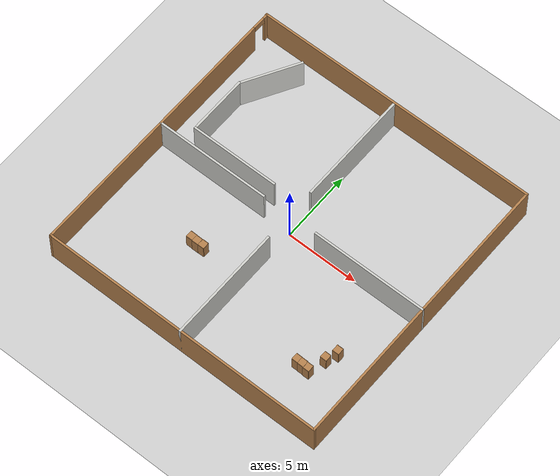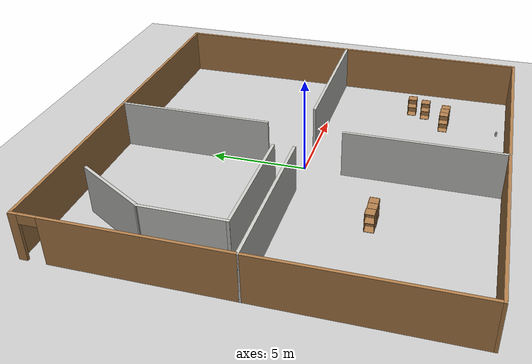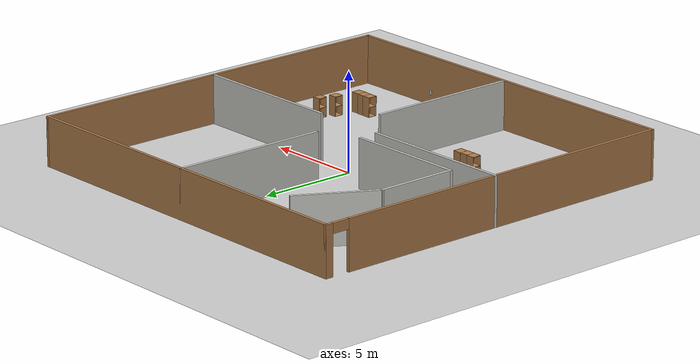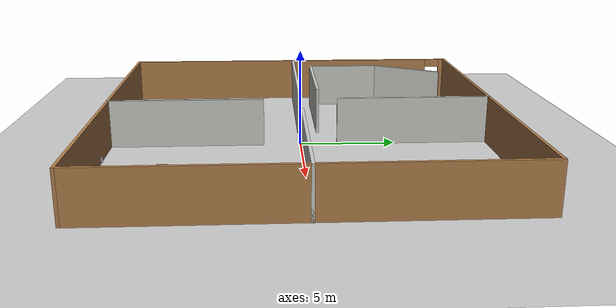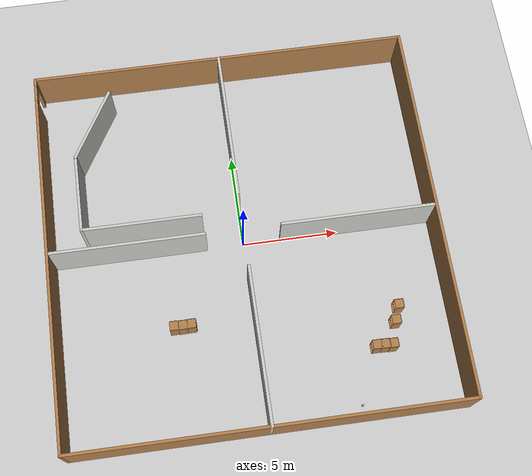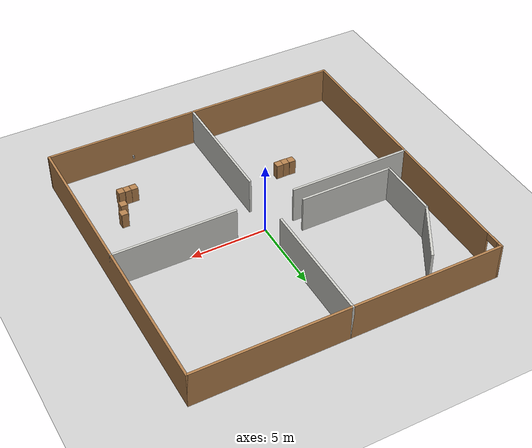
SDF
<sdf version="1.6">
 <world name="default">
  <light name="sun" type="directional">
   <pose>0 0 10 0 -0 0</pose>
   <diffuse>0.8 0.8 0.8 1</diffuse>
   <specular>0.2 0.2 0.2 1</specular>
   <attenuation>
    <range>1000</range>
    <constant>0.9</constant>
    <linear>0.01</linear>
    <quadratic>0.001</quadratic>
   </attenuation>
   <direction>-0.5 0.1 -0.9</direction>
  </light>
  <model name="ground_plane">
   <static>1</static>
   <link name="link">
    <collision name="collision">
     <geometry><plane><normal>0 0 1</normal><size>100 100</size></plane></geometry>
     <surface>
      <contact><collide_bitmask>65535</collide_bitmask></contact>
      <friction><ode><mu>100</mu><mu2>50</mu2></ode></friction>
     </surface>
    </collision>
    <visual name="visual">
     <cast_shadows>0</cast_shadows>
     <geometry><plane><normal>0 0 1</normal><size>100 100</size></plane></geometry>
     <material>
      <script><uri>file://media/materials/scripts/gazebo.material</uri><name>Gazebo/Grey</name></script>
     </material>
    </visual>
   </link>
  </model>
  <gravity>0 0 -9.8</gravity>
  <magnetic_field>6e-06 2.3e-05 -4.2e-05</magnetic_field>
  <atmosphere type="adiabatic"/>
  <physics name="default_physics" default="0" type="ode">
   <max_step_size>0.001</max_step_size>
   <real_time_factor>1</real_time_factor>
   <real_time_update_rate>1000</real_time_update_rate>
  </physics>
  <scene><ambient>0.4 0.4 0.4 1</ambient><background>0.7 0.7 0.7 1</background><shadows>1</shadows></scene>
  <audio><device>default</device></audio>
  <spherical_coordinates>
   <surface_model>EARTH_WGS84</surface_model>
   <latitude_deg>0</latitude_deg>
   <longitude_deg>0</longitude_deg>
   <elevation>0</elevation>
   <heading_deg>0</heading_deg>
  </spherical_coordinates>
  <model name="Sample_house">
   <link name="Wall_14">
    <collision name="Wall_14_Collision">
     <geometry><box><size>8.15 0.15 2.5</size></box></geometry>
     <pose>0 0 1.25 0 -0 0</pose>
    </collision>
    <visual name="Wall_14_Visual">
     <pose>0 0 1.25 0 -0 0</pose>
     <geometry><box><size>8.15 0.15 2.5</size></box></geometry>
     <material>
      <script><uri>file://media/materials/scripts/gazebo.material</uri><name>Gazebo/CeilingTiled</name></script>
      <ambient>0.435294 0.796078 0.67451 1</ambient>
     </material>
     <meta><layer>0</layer></meta>
    </visual>
    <pose>0 6 0 0 -0 -1.5708</pose>
   </link>
   <link name="Wall_16">
    <collision name="Wall_16_Collision">
     <geometry><box><size>8.15 0.15 2.5</size></box></geometry>
     <pose>0 0 1.25 0 -0 0</pose>
    </collision>
    <visual name="Wall_16_Visual">
     <pose>0 0 1.25 0 -0 0</pose>
     <geometry><box><size>8.15 0.15 2.5</size></box></geometry>
     <material>
      <script><uri>file://media/materials/scripts/gazebo.material</uri><name>Gazebo/CeilingTiled</name></script>
      <ambient>0.435294 0.796078 0.67451 1</ambient>
     </material>
     <meta><layer>0</layer></meta>
    </visual>
    <pose>-6 0 0 0 -0 0</pose>
   </link>
   <link name="Wall_18">
    <collision name="Wall_18_Collision">
     <geometry><box><size>8.15 0.15 2.5</size></box></geometry>
     <pose>0 0 1.25 0 -0 0</pose>
    </collision>
    <visual name="Wall_18_Visual">
     <pose>0 0 1.25 0 -0 0</pose>
     <geometry><box><size>8.15 0.15 2.5</size></box></geometry>
     <material>
      <script><uri>file://media/materials/scripts/gazebo.material</uri><name>Gazebo/CeilingTiled</name></script>
      <ambient>0.435294 0.796078 0.67451 1</ambient>
     </material>
     <meta><layer>0</layer></meta>
    </visual>
    <pose>0 -6 0 0 -0 1.5708</pose>
   </link>
   <link name="Wall_20">
    <collision name="Wall_20_Collision">
     <geometry><box><size>8.15 0.15 2.5</size></box></geometry>
     <pose>0 0 1.25 0 -0 0</pose>
    </collision>
    <visual name="Wall_20_Visual">
     <pose>0 0 1.25 0 -0 0</pose>
     <geometry><box><size>8.15 0.15 2.5</size></box></geometry>
     <material>
      <script><uri>file://media/materials/scripts/gazebo.material</uri><name>Gazebo/CeilingTiled</name></script>
      <ambient>0.435294 0.796078 0.67451 1</ambient>
     </material>
     <meta><layer>0</layer></meta>
    </visual>
    <pose>6 0 0 0 -0 3.14159</pose>
   </link>
   <link name="Wall_22">
    <collision name="Wall_22_Collision">
     <geometry><box><size>6.25 0.15 2.5</size></box></geometry>
     <pose>0 0 1.25 0 -0 0</pose>
    </collision>
    <visual name="Wall_22_Visual">
     <pose>0 0 1.25 0 -0 0</pose>
     <geometry><box><size>6.25 0.15 2.5</size></box></geometry>
     <material>
      <script><uri>file://media/materials/scripts/gazebo.material</uri><name>Gazebo/CeilingTiled</name></script>
      <ambient>0.435294 0.796078 0.67451 1</ambient>
     </material>
     <meta><layer>0</layer></meta>
    </visual>
    <pose>-5.12092 1.03734 0 0 -0 0</pose>
   </link>
   <link name="Wall_24">
    <collision name="Wall_24_Collision">
     <geometry><box><size>4.25 0.15 2.5</size></box></geometry>
     <pose>0 0 1.25 0 -0 0</pose>
    </collision>
    <visual name="Wall_24_Visual">
     <pose>0 0 1.25 0 -0 0</pose>
     <geometry><box><size>4.25 0.15 2.5</size></box></geometry>
     <material>
      <script><uri>file://media/materials/scripts/gazebo.material</uri><name>Gazebo/CeilingTiled</name></script>
      <ambient>0.435294 0.796078 0.67451 1</ambient>
     </material>
     <meta><layer>0</layer></meta>
    </visual>
    <pose>-8.17092 3.08734 0 0 -0 1.5708</pose>
   </link>
   <link name="Wall_25">
    <collision name="Wall_25_Collision">
     <geometry><box><size>4.25 0.15 2.5</size></box></geometry>
     <pose>0 0 1.25 0 -0 0</pose>
    </collision>
    <visual name="Wall_25_Visual">
     <pose>0 0 1.25 0 -0 0</pose>
     <geometry><box><size>4.25 0.15 2.5</size></box></geometry>
     <material>
      <script><uri>file://media/materials/scripts/gazebo.material</uri><name>Gazebo/CeilingTiled</name></script>
      <ambient>0.435294 0.796078 0.67451 1</ambient>
     </material>
     <meta><layer>0</layer></meta>
    </visual>
    <pose>-7.14592 6.91269 0 0 -0 1.0472</pose>
   </link>
   <link name="Wall_5">
    <collision name="Wall_5_Collision">
     <geometry><box><size>20.15 0.15 2.5</size></box></geometry>
     <pose>0 0 1.25 0 -0 0</pose>
    </collision>
    <visual name="Wall_5_Visual">
     <pose>0 0 1.25 0 -0 0</pose>
     <geometry><box><size>20.15 0.15 2.5</size></box></geometry>
     <material>
      <script><uri>file://media/materials/scripts/gazebo.material</uri><name>Gazebo/Wood</name></script>
      <ambient>0.996078 0.47451 0.0196078 1</ambient>
     </material>
     <meta><layer>0</layer></meta>
    </visual>
    <pose>10 0 0 0 -0 -1.5708</pose>
   </link>
   <link name="Wall_6">
    <collision name="Wall_6_Collision">
     <geometry><box><size>20.15 0.15 2.5</size></box></geometry>
     <pose>0 0 1.25 0 -0 0</pose>
    </collision>
    <visual name="Wall_6_Visual">
     <pose>0 0 1.25 0 -0 0</pose>
     <geometry><box><size>20.15 0.15 2.5</size></box></geometry>
     <material>
      <script><uri>file://media/materials/scripts/gazebo.material</uri><name>Gazebo/Wood</name></script>
      <ambient>0.996078 0.47451 0.0196078 1</ambient>
     </material>
     <meta><layer>0</layer></meta>
    </visual>
    <pose>0 -10 0 0 -0 3.14159</pose>
   </link>
   <link name="Wall_7">
    <pose>-10 0 0 0 -0 1.5708</pose>
    <visual name="Wall_7_Visual_0">
     <pose>-0.66033 0 1.25 0 -0 0</pose>
     <geometry><box><size>18.8293 0.15 2.5</size></box></geometry>
     <material>
      <script><uri>file://media/materials/scripts/gazebo.material</uri><name>Gazebo/Wood</name></script>
      <ambient>0.996078 0.47451 0.0196078 1</ambient>
     </material>
     <meta><layer>0</layer></meta>
    </visual>
    <collision name="Wall_7_Collision_0">
     <geometry><box><size>18.8293 0.15 2.5</size></box></geometry>
     <pose>-0.66033 0 1.25 0 -0 0</pose>
    </collision>
    <visual name="Wall_7_Visual_1">
     <pose>9.86467 0 1.25 0 -0 0</pose>
     <geometry><box><size>0.420661 0.15 2.5</size></box></geometry>
     <material>
      <script><uri>file://media/materials/scripts/gazebo.material</uri><name>Gazebo/Wood</name></script>
      <ambient>0.996078 0.47451 0.0196078 1</ambient>
     </material>
     <meta><layer>0</layer></meta>
    </visual>
    <collision name="Wall_7_Collision_1">
     <geometry><box><size>0.420661 0.15 2.5</size></box></geometry>
     <pose>9.86467 0 1.25 0 -0 0</pose>
    </collision>
    <visual name="Wall_7_Visual_2">
     <pose>9.20434 0 2.25 0 -0 0</pose>
     <geometry><box><size>0.9 0.15 0.5</size></box></geometry>
     <material>
      <script><uri>file://media/materials/scripts/gazebo.material</uri><name>Gazebo/Wood</name></script>
      <ambient>0.996078 0.47451 0.0196078 1</ambient>
     </material>
     <meta><layer>0</layer></meta>
    </visual>
    <collision name="Wall_7_Collision_2">
     <geometry><box><size>0.9 0.15 0.5</size></box></geometry>
     <pose>9.20434 0 2.25 0 -0 0</pose>
    </collision>
   </link>
   <link name="Wall_8">
    <collision name="Wall_8_Collision">
     <geometry><box><size>20.15 0.15 2.5</size></box></geometry>
     <pose>0 0 1.25 0 -0 0</pose>
    </collision>
    <visual name="Wall_8_Visual">
     <pose>0 0 1.25 0 -0 0</pose>
     <geometry><box><size>20.15 0.15 2.5</size></box></geometry>
     <material>
      <script><uri>file://media/materials/scripts/gazebo.material</uri><name>Gazebo/Wood</name></script>
      <ambient>0.996078 0.47451 0.0196078 1</ambient>
     </material>
     <meta><layer>0</layer></meta>
    </visual>
    <pose>0 10 0 0 -0 0</pose>
   </link>
   <static>1</static>
  </model>
  <model name="cabinet">
   <static>1</static>
   <link name="cabinet_bottom_plate">
    <inertial>
     <pose>0 0 -1 0 -0 0</pose>
     <inertia><ixx>2.05</ixx><ixy>0</ixy><ixz>0</ixz><iyy>2.05</iyy><iyz>0</iyz><izz>2.05</izz></inertia>
     <mass>25</mass>
    </inertial>
    <collision name="cabinet_bottom_plate_geom">
     <pose>0 0 0.01 0 -0 0</pose>
     <geometry><box><size>0.45 0.45 0.02</size></box></geometry>
    </collision>
    <visual name="cabinet_bottom_plate_geom_visual">
     <pose>0 0 0.01 0 -0 0</pose>
     <geometry><box><size>0.45 0.45 0.02</size></box></geometry>
     <material>
      <script><uri>file://media/materials/scripts/gazebo.material</uri><name>Gazebo/Wood</name></script>
     </material>
    </visual>
    <collision name="cabinet_bottom_plate_geom_cabinet_back_plate">
     <pose>0.235 0 0.51 0 -0 0</pose>
     <geometry><box><size>0.02 0.45 1.02</size></box></geometry>
    </collision>
    <visual name="cabinet_bottom_plate_geom_cabinet_back_plate_visual">
     <pose>0.235 0 0.51 0 -0 0</pose>
     <geometry><box><size>0.02 0.45 1.02</size></box></geometry>
     <material>
      <script><uri>file://media/materials/scripts/gazebo.material</uri><name>Gazebo/Wood</name></script>
     </material>
    </visual>
    <collision name="cabinet_bottom_plate_geom_cabinet_left_plate">
     <pose>0 0.235 0.51 0 -0 0</pose>
     <geometry><box><size>0.45 0.02 1.02</size></box></geometry>
    </collision>
    <visual name="cabinet_bottom_plate_geom_cabinet_left_plate_visual">
     <pose>0 0.235 0.51 0 -0 0</pose>
     <geometry><box><size>0.45 0.02 1.02</size></box></geometry>
     <material>
      <script><uri>file://media/materials/scripts/gazebo.material</uri><name>Gazebo/Wood</name></script>
     </material>
    </visual>
    <collision name="cabinet_bottom_plate_geom_cabinet_middle_plate">
     <pose>0 0 0.51 0 -0 0</pose>
     <geometry><box><size>0.45 0.45 0.02</size></box></geometry>
    </collision>
    <visual name="cabinet_bottom_plate_geom_cabinet_middle_plate_visual">
     <pose>0 0 0.51 0 -0 0</pose>
     <geometry><box><size>0.45 0.45 0.02</size></box></geometry>
     <material>
      <script><uri>file://media/materials/scripts/gazebo.material</uri><name>Gazebo/Wood</name></script>
     </material>
    </visual>
    <collision name="cabinet_bottom_plate_geom_cabinet_right_plate">
     <pose>0 -0.235 0.51 0 -0 0</pose>
     <geometry><box><size>0.45 0.02 1.02</size></box></geometry>
    </collision>
    <visual name="cabinet_bottom_plate_geom_cabinet_right_plate_visual">
     <pose>0 -0.235 0.51 0 -0 0</pose>
     <geometry><box><size>0.45 0.02 1.02</size></box></geometry>
     <material>
      <script><uri>file://media/materials/scripts/gazebo.material</uri><name>Gazebo/Wood</name></script>
     </material>
    </visual>
    <collision name="cabinet_bottom_plate_geom_cabinet_top_plate">
     <pose>0 0 1.01 0 -0 0</pose>
     <geometry><box><size>0.45 0.45 0.02</size></box></geometry>
    </collision>
    <visual name="cabinet_bottom_plate_geom_cabinet_top_plate_visual">
     <pose>0 0 1.01 0 -0 0</pose>
     <geometry><box><size>0.45 0.45 0.02</size></box></geometry>
     <material>
      <script><uri>file://media/materials/scripts/gazebo.material</uri><name>Gazebo/Wood</name></script>
     </material>
    </visual>
   </link>
   <pose>-4.12589 -4.16756 0 0 -0 0</pose>
  </model>
  <model name="cabinet_0">
   <static>1</static>
   <link name="cabinet_bottom_plate">
    <inertial>
     <pose>0 0 -1 0 -0 0</pose>
     <inertia><ixx>2.05</ixx><ixy>0</ixy><ixz>0</ixz><iyy>2.05</iyy><iyz>0</iyz><izz>2.05</izz></inertia>
     <mass>25</mass>
    </inertial>
    <collision name="cabinet_bottom_plate_geom">
     <pose>0 0 0.01 0 -0 0</pose>
     <geometry><box><size>0.45 0.45 0.02</size></box></geometry>
    </collision>
    <visual name="cabinet_bottom_plate_geom_visual">
     <pose>0 0 0.01 0 -0 0</pose>
     <geometry><box><size>0.45 0.45 0.02</size></box></geometry>
     <material>
      <script><uri>file://media/materials/scripts/gazebo.material</uri><name>Gazebo/Wood</name></script>
     </material>
    </visual>
    <collision name="cabinet_bottom_plate_geom_cabinet_back_plate">
     <pose>0.235 0 0.51 0 -0 0</pose>
     <geometry><box><size>0.02 0.45 1.02</size></box></geometry>
    </collision>
    <visual name="cabinet_bottom_plate_geom_cabinet_back_plate_visual">
     <pose>0.235 0 0.51 0 -0 0</pose>
     <geometry><box><size>0.02 0.45 1.02</size></box></geometry>
     <material>
      <script><uri>file://media/materials/scripts/gazebo.material</uri><name>Gazebo/Wood</name></script>
     </material>
    </visual>
    <collision name="cabinet_bottom_plate_geom_cabinet_left_plate">
     <pose>0 0.235 0.51 0 -0 0</pose>
     <geometry><box><size>0.45 0.02 1.02</size></box></geometry>
    </collision>
    <visual name="cabinet_bottom_plate_geom_cabinet_left_plate_visual">
     <pose>0 0.235 0.51 0 -0 0</pose>
     <geometry><box><size>0.45 0.02 1.02</size></box></geometry>
     <material>
      <script><uri>file://media/materials/scripts/gazebo.material</uri><name>Gazebo/Wood</name></script>
     </material>
    </visual>
    <collision name="cabinet_bottom_plate_geom_cabinet_middle_plate">
     <pose>0 0 0.51 0 -0 0</pose>
     <geometry><box><size>0.45 0.45 0.02</size></box></geometry>
    </collision>
    <visual name="cabinet_bottom_plate_geom_cabinet_middle_plate_visual">
     <pose>0 0 0.51 0 -0 0</pose>
     <geometry><box><size>0.45 0.45 0.02</size></box></geometry>
     <material>
      <script><uri>file://media/materials/scripts/gazebo.material</uri><name>Gazebo/Wood</name></script>
     </material>
    </visual>
    <collision name="cabinet_bottom_plate_geom_cabinet_right_plate">
     <pose>0 -0.235 0.51 0 -0 0</pose>
     <geometry><box><size>0.45 0.02 1.02</size></box></geometry>
    </collision>
    <visual name="cabinet_bottom_plate_geom_cabinet_right_plate_visual">
     <pose>0 -0.235 0.51 0 -0 0</pose>
     <geometry><box><size>0.45 0.02 1.02</size></box></geometry>
     <material>
      <script><uri>file://media/materials/scripts/gazebo.material</uri><name>Gazebo/Wood</name></script>
     </material>
    </visual>
    <collision name="cabinet_bottom_plate_geom_cabinet_top_plate">
     <pose>0 0 1.01 0 -0 0</pose>
     <geometry><box><size>0.45 0.45 0.02</size></box></geometry>
    </collision>
    <visual name="cabinet_bottom_plate_geom_cabinet_top_plate_visual">
     <pose>0 0 1.01 0 -0 0</pose>
     <geometry><box><size>0.45 0.45 0.02</size></box></geometry>
     <material>
      <script><uri>file://media/materials/scripts/gazebo.material</uri><name>Gazebo/Wood</name></script>
     </material>
    </visual>
   </link>
   <pose>-3.67632 -4.18228 0 0 -0 0</pose>
  </model>
  <model name="cabinet_1">
   <static>1</static>
   <link name="cabinet_bottom_plate">
    <inertial>
     <pose>0 0 -1 0 -0 0</pose>
     <inertia><ixx>2.05</ixx><ixy>0</ixy><ixz>0</ixz><iyy>2.05</iyy><iyz>0</iyz><izz>2.05</izz></inertia>
     <mass>25</mass>
    </inertial>
    <collision name="cabinet_bottom_plate_geom">
     <pose>0 0 0.01 0 -0 0</pose>
     <geometry><box><size>0.45 0.45 0.02</size></box></geometry>
    </collision>
    <visual name="cabinet_bottom_plate_geom_visual">
     <pose>0 0 0.01 0 -0 0</pose>
     <geometry><box><size>0.45 0.45 0.02</size></box></geometry>
     <material>
      <script><uri>file://media/materials/scripts/gazebo.material</uri><name>Gazebo/Wood</name></script>
     </material>
    </visual>
    <collision name="cabinet_bottom_plate_geom_cabinet_back_plate">
     <pose>0.235 0 0.51 0 -0 0</pose>
     <geometry><box><size>0.02 0.45 1.02</size></box></geometry>
    </collision>
    <visual name="cabinet_bottom_plate_geom_cabinet_back_plate_visual">
     <pose>0.235 0 0.51 0 -0 0</pose>
     <geometry><box><size>0.02 0.45 1.02</size></box></geometry>
     <material>
      <script><uri>file://media/materials/scripts/gazebo.material</uri><name>Gazebo/Wood</name></script>
     </material>
    </visual>
    <collision name="cabinet_bottom_plate_geom_cabinet_left_plate">
     <pose>0 0.235 0.51 0 -0 0</pose>
     <geometry><box><size>0.45 0.02 1.02</size></box></geometry>
    </collision>
    <visual name="cabinet_bottom_plate_geom_cabinet_left_plate_visual">
     <pose>0 0.235 0.51 0 -0 0</pose>
     <geometry><box><size>0.45 0.02 1.02</size></box></geometry>
     <material>
      <script><uri>file://media/materials/scripts/gazebo.material</uri><name>Gazebo/Wood</name></script>
     </material>
    </visual>
    <collision name="cabinet_bottom_plate_geom_cabinet_middle_plate">
     <pose>0 0 0.51 0 -0 0</pose>
     <geometry><box><size>0.45 0.45 0.02</size></box></geometry>
    </collision>
    <visual name="cabinet_bottom_plate_geom_cabinet_middle_plate_visual">
     <pose>0 0 0.51 0 -0 0</pose>
     <geometry><box><size>0.45 0.45 0.02</size></box></geometry>
     <material>
      <script><uri>file://media/materials/scripts/gazebo.material</uri><name>Gazebo/Wood</name></script>
     </material>
    </visual>
    <collision name="cabinet_bottom_plate_geom_cabinet_right_plate">
     <pose>0 -0.235 0.51 0 -0 0</pose>
     <geometry><box><size>0.45 0.02 1.02</size></box></geometry>
    </collision>
    <visual name="cabinet_bottom_plate_geom_cabinet_right_plate_visual">
     <pose>0 -0.235 0.51 0 -0 0</pose>
     <geometry><box><size>0.45 0.02 1.02</size></box></geometry>
     <material>
      <script><uri>file://media/materials/scripts/gazebo.material</uri><name>Gazebo/Wood</name></script>
     </material>
    </visual>
    <collision name="cabinet_bottom_plate_geom_cabinet_top_plate">
     <pose>0 0 1.01 0 -0 0</pose>
     <geometry><box><size>0.45 0.45 0.02</size></box></geometry>
    </collision>
    <visual name="cabinet_bottom_plate_geom_cabinet_top_plate_visual">
     <pose>0 0 1.01 0 -0 0</pose>
     <geometry><box><size>0.45 0.45 0.02</size></box></geometry>
     <material>
      <script><uri>file://media/materials/scripts/gazebo.material</uri><name>Gazebo/Wood</name></script>
     </material>
    </visual>
   </link>
   <pose>-3.23374 -4.17124 0 0 -0 0</pose>
  </model>
  <model name="beer">
   <link name="link">
    <pose>0 0 0.115 0 -0 0</pose>
    <inertial>
     <mass>0.39</mass>
     <inertia><ixx>0.00058</ixx><ixy>0</ixy><ixz>0</ixz><iyy>0.00058</iyy><iyz>0</iyz><izz>0.00019</izz></inertia>
    </inertial>
    <collision name="collision">
     <geometry><cylinder><radius>0.055</radius><length>0.23</length></cylinder></geometry>
    </collision>
    <visual name="visual">
     <geometry><cylinder><radius>0.055</radius><length>0.23</length></cylinder></geometry>
     <material>
      <script>
       <uri>model://beer/materials/scripts</uri>
       <uri>model://beer/materials/textures</uri>
       <name>Beer/Diffuse</name>
      </script>
     </material>
    </visual>
   </link>
   <pose>4.63252 -9.39477 0.774996 2.5e-05 9.4e-05 9.2e-05</pose>
  </model>
  <model name="cabinet_2">
   <static>1</static>
   <link name="cabinet_bottom_plate">
    <inertial>
     <pose>0 0 -1 0 -0 0</pose>
     <inertia><ixx>2.05</ixx><ixy>0</ixy><ixz>0</ixz><iyy>2.05</iyy><iyz>0</iyz><izz>2.05</izz></inertia>
     <mass>25</mass>
    </inertial>
    <collision name="cabinet_bottom_plate_geom">
     <pose>0 0 0.01 0 -0 0</pose>
     <geometry><box><size>0.45 0.45 0.02</size></box></geometry>
    </collision>
    <visual name="cabinet_bottom_plate_geom_visual">
     <pose>0 0 0.01 0 -0 0</pose>
     <geometry><box><size>0.45 0.45 0.02</size></box></geometry>
     <material>
      <script><uri>file://media/materials/scripts/gazebo.material</uri><name>Gazebo/Wood</name></script>
     </material>
    </visual>
    <collision name="cabinet_bottom_plate_geom_cabinet_back_plate">
     <pose>0.235 0 0.51 0 -0 0</pose>
     <geometry><box><size>0.02 0.45 1.02</size></box></geometry>
    </collision>
    <visual name="cabinet_bottom_plate_geom_cabinet_back_plate_visual">
     <pose>0.235 0 0.51 0 -0 0</pose>
     <geometry><box><size>0.02 0.45 1.02</size></box></geometry>
     <material>
      <script><uri>file://media/materials/scripts/gazebo.material</uri><name>Gazebo/Wood</name></script>
     </material>
    </visual>
    <collision name="cabinet_bottom_plate_geom_cabinet_left_plate">
     <pose>0 0.235 0.51 0 -0 0</pose>
     <geometry><box><size>0.45 0.02 1.02</size></box></geometry>
    </collision>
    <visual name="cabinet_bottom_plate_geom_cabinet_left_plate_visual">
     <pose>0 0.235 0.51 0 -0 0</pose>
     <geometry><box><size>0.45 0.02 1.02</size></box></geometry>
     <material>
      <script><uri>file://media/materials/scripts/gazebo.material</uri><name>Gazebo/Wood</name></script>
     </material>
    </visual>
    <collision name="cabinet_bottom_plate_geom_cabinet_middle_plate">
     <pose>0 0 0.51 0 -0 0</pose>
     <geometry><box><size>0.45 0.45 0.02</size></box></geometry>
    </collision>
    <visual name="cabinet_bottom_plate_geom_cabinet_middle_plate_visual">
     <pose>0 0 0.51 0 -0 0</pose>
     <geometry><box><size>0.45 0.45 0.02</size></box></geometry>
     <material>
      <script><uri>file://media/materials/scripts/gazebo.material</uri><name>Gazebo/Wood</name></script>
     </material>
    </visual>
    <collision name="cabinet_bottom_plate_geom_cabinet_right_plate">
     <pose>0 -0.235 0.51 0 -0 0</pose>
     <geometry><box><size>0.45 0.02 1.02</size></box></geometry>
    </collision>
    <visual name="cabinet_bottom_plate_geom_cabinet_right_plate_visual">
     <pose>0 -0.235 0.51 0 -0 0</pose>
     <geometry><box><size>0.45 0.02 1.02</size></box></geometry>
     <material>
      <script><uri>file://media/materials/scripts/gazebo.material</uri><name>Gazebo/Wood</name></script>
     </material>
    </visual>
    <collision name="cabinet_bottom_plate_geom_cabinet_top_plate">
     <pose>0 0 1.01 0 -0 0</pose>
     <geometry><box><size>0.45 0.45 0.02</size></box></geometry>
    </collision>
    <visual name="cabinet_bottom_plate_geom_cabinet_top_plate_visual">
     <pose>0 0 1.01 0 -0 0</pose>
     <geometry><box><size>0.45 0.45 0.02</size></box></geometry>
     <material>
      <script><uri>file://media/materials/scripts/gazebo.material</uri><name>Gazebo/Wood</name></script>
     </material>
    </visual>
   </link>
   <pose>6.7359 -6.53452 0 0 -0 0</pose>
  </model>
  <model name="cabinet_3">
   <static>1</static>
   <link name="cabinet_bottom_plate">
    <inertial>
     <pose>0 0 -1 0 -0 0</pose>
     <inertia><ixx>2.05</ixx><ixy>0</ixy><ixz>0</ixz><iyy>2.05</iyy><iyz>0</iyz><izz>2.05</izz></inertia>
     <mass>25</mass>
    </inertial>
    <collision name="cabinet_bottom_plate_geom">
     <pose>0 0 0.01 0 -0 0</pose>
     <geometry><box><size>0.45 0.45 0.02</size></box></geometry>
    </collision>
    <visual name="cabinet_bottom_plate_geom_visual">
     <pose>0 0 0.01 0 -0 0</pose>
     <geometry><box><size>0.45 0.45 0.02</size></box></geometry>
     <material>
      <script><uri>file://media/materials/scripts/gazebo.material</uri><name>Gazebo/Wood</name></script>
     </material>
    </visual>
    <collision name="cabinet_bottom_plate_geom_cabinet_back_plate">
     <pose>0.235 0 0.51 0 -0 0</pose>
     <geometry><box><size>0.02 0.45 1.02</size></box></geometry>
    </collision>
    <visual name="cabinet_bottom_plate_geom_cabinet_back_plate_visual">
     <pose>0.235 0 0.51 0 -0 0</pose>
     <geometry><box><size>0.02 0.45 1.02</size></box></geometry>
     <material>
      <script><uri>file://media/materials/scripts/gazebo.material</uri><name>Gazebo/Wood</name></script>
     </material>
    </visual>
    <collision name="cabinet_bottom_plate_geom_cabinet_left_plate">
     <pose>0 0.235 0.51 0 -0 0</pose>
     <geometry><box><size>0.45 0.02 1.02</size></box></geometry>
    </collision>
    <visual name="cabinet_bottom_plate_geom_cabinet_left_plate_visual">
     <pose>0 0.235 0.51 0 -0 0</pose>
     <geometry><box><size>0.45 0.02 1.02</size></box></geometry>
     <material>
      <script><uri>file://media/materials/scripts/gazebo.material</uri><name>Gazebo/Wood</name></script>
     </material>
    </visual>
    <collision name="cabinet_bottom_plate_geom_cabinet_middle_plate">
     <pose>0 0 0.51 0 -0 0</pose>
     <geometry><box><size>0.45 0.45 0.02</size></box></geometry>
    </collision>
    <visual name="cabinet_bottom_plate_geom_cabinet_middle_plate_visual">
     <pose>0 0 0.51 0 -0 0</pose>
     <geometry><box><size>0.45 0.45 0.02</size></box></geometry>
     <material>
      <script><uri>file://media/materials/scripts/gazebo.material</uri><name>Gazebo/Wood</name></script>
     </material>
    </visual>
    <collision name="cabinet_bottom_plate_geom_cabinet_right_plate">
     <pose>0 -0.235 0.51 0 -0 0</pose>
     <geometry><box><size>0.45 0.02 1.02</size></box></geometry>
    </collision>
    <visual name="cabinet_bottom_plate_geom_cabinet_right_plate_visual">
     <pose>0 -0.235 0.51 0 -0 0</pose>
     <geometry><box><size>0.45 0.02 1.02</size></box></geometry>
     <material>
      <script><uri>file://media/materials/scripts/gazebo.material</uri><name>Gazebo/Wood</name></script>
     </material>
    </visual>
    <collision name="cabinet_bottom_plate_geom_cabinet_top_plate">
     <pose>0 0 1.01 0 -0 0</pose>
     <geometry><box><size>0.45 0.45 0.02</size></box></geometry>
    </collision>
    <visual name="cabinet_bottom_plate_geom_cabinet_top_plate_visual">
     <pose>0 0 1.01 0 -0 0</pose>
     <geometry><box><size>0.45 0.45 0.02</size></box></geometry>
     <material>
      <script><uri>file://media/materials/scripts/gazebo.material</uri><name>Gazebo/Wood</name></script>
     </material>
    </visual>
   </link>
   <pose>6.31648 -6.511 0 0 -0 0</pose>
  </model>
  <model name="cabinet_4">
   <static>1</static>
   <link name="cabinet_bottom_plate">
    <inertial>
     <pose>0 0 -1 0 -0 0</pose>
     <inertia><ixx>2.05</ixx><ixy>0</ixy><ixz>0</ixz><iyy>2.05</iyy><iyz>0</iyz><izz>2.05</izz></inertia>
     <mass>25</mass>
    </inertial>
    <collision name="cabinet_bottom_plate_geom">
     <pose>0 0 0.01 0 -0 0</pose>
     <geometry><box><size>0.45 0.45 0.02</size></box></geometry>
    </collision>
    <visual name="cabinet_bottom_plate_geom_visual">
     <pose>0 0 0.01 0 -0 0</pose>
     <geometry><box><size>0.45 0.45 0.02</size></box></geometry>
     <material>
      <script><uri>file://media/materials/scripts/gazebo.material</uri><name>Gazebo/Wood</name></script>
     </material>
    </visual>
    <collision name="cabinet_bottom_plate_geom_cabinet_back_plate">
     <pose>0.235 0 0.51 0 -0 0</pose>
     <geometry><box><size>0.02 0.45 1.02</size></box></geometry>
    </collision>
    <visual name="cabinet_bottom_plate_geom_cabinet_back_plate_visual">
     <pose>0.235 0 0.51 0 -0 0</pose>
     <geometry><box><size>0.02 0.45 1.02</size></box></geometry>
     <material>
      <script><uri>file://media/materials/scripts/gazebo.material</uri><name>Gazebo/Wood</name></script>
     </material>
    </visual>
    <collision name="cabinet_bottom_plate_geom_cabinet_left_plate">
     <pose>0 0.235 0.51 0 -0 0</pose>
     <geometry><box><size>0.45 0.02 1.02</size></box></geometry>
    </collision>
    <visual name="cabinet_bottom_plate_geom_cabinet_left_plate_visual">
     <pose>0 0.235 0.51 0 -0 0</pose>
     <geometry><box><size>0.45 0.02 1.02</size></box></geometry>
     <material>
      <script><uri>file://media/materials/scripts/gazebo.material</uri><name>Gazebo/Wood</name></script>
     </material>
    </visual>
    <collision name="cabinet_bottom_plate_geom_cabinet_middle_plate">
     <pose>0 0 0.51 0 -0 0</pose>
     <geometry><box><size>0.45 0.45 0.02</size></box></geometry>
    </collision>
    <visual name="cabinet_bottom_plate_geom_cabinet_middle_plate_visual">
     <pose>0 0 0.51 0 -0 0</pose>
     <geometry><box><size>0.45 0.45 0.02</size></box></geometry>
     <material>
      <script><uri>file://media/materials/scripts/gazebo.material</uri><name>Gazebo/Wood</name></script>
     </material>
    </visual>
    <collision name="cabinet_bottom_plate_geom_cabinet_right_plate">
     <pose>0 -0.235 0.51 0 -0 0</pose>
     <geometry><box><size>0.45 0.02 1.02</size></box></geometry>
    </collision>
    <visual name="cabinet_bottom_plate_geom_cabinet_right_plate_visual">
     <pose>0 -0.235 0.51 0 -0 0</pose>
     <geometry><box><size>0.45 0.02 1.02</size></box></geometry>
     <material>
      <script><uri>file://media/materials/scripts/gazebo.material</uri><name>Gazebo/Wood</name></script>
     </material>
    </visual>
    <collision name="cabinet_bottom_plate_geom_cabinet_top_plate">
     <pose>0 0 1.01 0 -0 0</pose>
     <geometry><box><size>0.45 0.45 0.02</size></box></geometry>
    </collision>
    <visual name="cabinet_bottom_plate_geom_cabinet_top_plate_visual">
     <pose>0 0 1.01 0 -0 0</pose>
     <geometry><box><size>0.45 0.45 0.02</size></box></geometry>
     <material>
      <script><uri>file://media/materials/scripts/gazebo.material</uri><name>Gazebo/Wood</name></script>
     </material>
    </visual>
   </link>
   <pose>5.8994 -6.50101 0 0 -0 0</pose>
  </model>
  <model name="cabinet_5">
   <static>1</static>
   <link name="cabinet_bottom_plate">
    <inertial>
     <pose>0 0 -1 0 -0 0</pose>
     <inertia><ixx>2.05</ixx><ixy>0</ixy><ixz>0</ixz><iyy>2.05</iyy><iyz>0</iyz><izz>2.05</izz></inertia>
     <mass>25</mass>
    </inertial>
    <collision name="cabinet_bottom_plate_geom">
     <pose>0 0 0.01 0 -0 0</pose>
     <geometry><box><size>0.45 0.45 0.02</size></box></geometry>
    </collision>
    <visual name="cabinet_bottom_plate_geom_visual">
     <pose>0 0 0.01 0 -0 0</pose>
     <geometry><box><size>0.45 0.45 0.02</size></box></geometry>
     <material>
      <script><uri>file://media/materials/scripts/gazebo.material</uri><name>Gazebo/Wood</name></script>
     </material>
    </visual>
    <collision name="cabinet_bottom_plate_geom_cabinet_back_plate">
     <pose>0.235 0 0.51 0 -0 0</pose>
     <geometry><box><size>0.02 0.45 1.02</size></box></geometry>
    </collision>
    <visual name="cabinet_bottom_plate_geom_cabinet_back_plate_visual">
     <pose>0.235 0 0.51 0 -0 0</pose>
     <geometry><box><size>0.02 0.45 1.02</size></box></geometry>
     <material>
      <script><uri>file://media/materials/scripts/gazebo.material</uri><name>Gazebo/Wood</name></script>
     </material>
    </visual>
    <collision name="cabinet_bottom_plate_geom_cabinet_left_plate">
     <pose>0 0.235 0.51 0 -0 0</pose>
     <geometry><box><size>0.45 0.02 1.02</size></box></geometry>
    </collision>
    <visual name="cabinet_bottom_plate_geom_cabinet_left_plate_visual">
     <pose>0 0.235 0.51 0 -0 0</pose>
     <geometry><box><size>0.45 0.02 1.02</size></box></geometry>
     <material>
      <script><uri>file://media/materials/scripts/gazebo.material</uri><name>Gazebo/Wood</name></script>
     </material>
    </visual>
    <collision name="cabinet_bottom_plate_geom_cabinet_middle_plate">
     <pose>0 0 0.51 0 -0 0</pose>
     <geometry><box><size>0.45 0.45 0.02</size></box></geometry>
    </collision>
    <visual name="cabinet_bottom_plate_geom_cabinet_middle_plate_visual">
     <pose>0 0 0.51 0 -0 0</pose>
     <geometry><box><size>0.45 0.45 0.02</size></box></geometry>
     <material>
      <script><uri>file://media/materials/scripts/gazebo.material</uri><name>Gazebo/Wood</name></script>
     </material>
    </visual>
    <collision name="cabinet_bottom_plate_geom_cabinet_right_plate">
     <pose>0 -0.235 0.51 0 -0 0</pose>
     <geometry><box><size>0.45 0.02 1.02</size></box></geometry>
    </collision>
    <visual name="cabinet_bottom_plate_geom_cabinet_right_plate_visual">
     <pose>0 -0.235 0.51 0 -0 0</pose>
     <geometry><box><size>0.45 0.02 1.02</size></box></geometry>
     <material>
      <script><uri>file://media/materials/scripts/gazebo.material</uri><name>Gazebo/Wood</name></script>
     </material>
    </visual>
    <collision name="cabinet_bottom_plate_geom_cabinet_top_plate">
     <pose>0 0 1.01 0 -0 0</pose>
     <geometry><box><size>0.45 0.45 0.02</size></box></geometry>
    </collision>
    <visual name="cabinet_bottom_plate_geom_cabinet_top_plate_visual">
     <pose>0 0 1.01 0 -0 0</pose>
     <geometry><box><size>0.45 0.45 0.02</size></box></geometry>
     <material>
      <script><uri>file://media/materials/scripts/gazebo.material</uri><name>Gazebo/Wood</name></script>
     </material>
    </visual>
   </link>
   <pose>7.38638 -4.57138 0 0 -0 0</pose>
  </model>
  <model name="cabinet_6">
   <static>1</static>
   <link name="cabinet_bottom_plate">
    <inertial>
     <pose>0 0 -1 0 -0 0</pose>
     <inertia><ixx>2.05</ixx><ixy>0</ixy><ixz>0</ixz><iyy>2.05</iyy><iyz>0</iyz><izz>2.05</izz></inertia>
     <mass>25</mass>
    </inertial>
    <collision name="cabinet_bottom_plate_geom">
     <pose>0 0 0.01 0 -0 0</pose>
     <geometry><box><size>0.45 0.45 0.02</size></box></geometry>
    </collision>
    <visual name="cabinet_bottom_plate_geom_visual">
     <pose>0 0 0.01 0 -0 0</pose>
     <geometry><box><size>0.45 0.45 0.02</size></box></geometry>
     <material>
      <script><uri>file://media/materials/scripts/gazebo.material</uri><name>Gazebo/Wood</name></script>
     </material>
    </visual>
    <collision name="cabinet_bottom_plate_geom_cabinet_back_plate">
     <pose>0.235 0 0.51 0 -0 0</pose>
     <geometry><box><size>0.02 0.45 1.02</size></box></geometry>
    </collision>
    <visual name="cabinet_bottom_plate_geom_cabinet_back_plate_visual">
     <pose>0.235 0 0.51 0 -0 0</pose>
     <geometry><box><size>0.02 0.45 1.02</size></box></geometry>
     <material>
      <script><uri>file://media/materials/scripts/gazebo.material</uri><name>Gazebo/Wood</name></script>
     </material>
    </visual>
    <collision name="cabinet_bottom_plate_geom_cabinet_left_plate">
     <pose>0 0.235 0.51 0 -0 0</pose>
     <geometry><box><size>0.45 0.02 1.02</size></box></geometry>
    </collision>
    <visual name="cabinet_bottom_plate_geom_cabinet_left_plate_visual">
     <pose>0 0.235 0.51 0 -0 0</pose>
     <geometry><box><size>0.45 0.02 1.02</size></box></geometry>
     <material>
      <script><uri>file://media/materials/scripts/gazebo.material</uri><name>Gazebo/Wood</name></script>
     </material>
    </visual>
    <collision name="cabinet_bottom_plate_geom_cabinet_middle_plate">
     <pose>0 0 0.51 0 -0 0</pose>
     <geometry><box><size>0.45 0.45 0.02</size></box></geometry>
    </collision>
    <visual name="cabinet_bottom_plate_geom_cabinet_middle_plate_visual">
     <pose>0 0 0.51 0 -0 0</pose>
     <geometry><box><size>0.45 0.45 0.02</size></box></geometry>
     <material>
      <script><uri>file://media/materials/scripts/gazebo.material</uri><name>Gazebo/Wood</name></script>
     </material>
    </visual>
    <collision name="cabinet_bottom_plate_geom_cabinet_right_plate">
     <pose>0 -0.235 0.51 0 -0 0</pose>
     <geometry><box><size>0.45 0.02 1.02</size></box></geometry>
    </collision>
    <visual name="cabinet_bottom_plate_geom_cabinet_right_plate_visual">
     <pose>0 -0.235 0.51 0 -0 0</pose>
     <geometry><box><size>0.45 0.02 1.02</size></box></geometry>
     <material>
      <script><uri>file://media/materials/scripts/gazebo.material</uri><name>Gazebo/Wood</name></script>
     </material>
    </visual>
    <collision name="cabinet_bottom_plate_geom_cabinet_top_plate">
     <pose>0 0 1.01 0 -0 0</pose>
     <geometry><box><size>0.45 0.45 0.02</size></box></geometry>
    </collision>
    <visual name="cabinet_bottom_plate_geom_cabinet_top_plate_visual">
     <pose>0 0 1.01 0 -0 0</pose>
     <geometry><box><size>0.45 0.45 0.02</size></box></geometry>
     <material>
      <script><uri>file://media/materials/scripts/gazebo.material</uri><name>Gazebo/Wood</name></script>
     </material>
    </visual>
   </link>
   <pose>7.09521 -5.35379 0 0 -0 0</pose>
  </model>
 </world>
</sdf>
